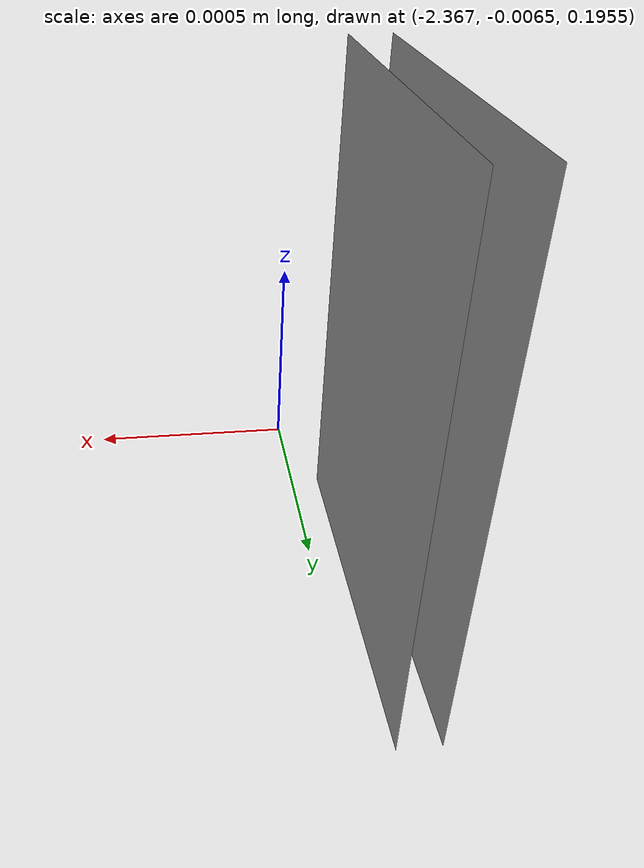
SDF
<sdf version="1.7">
 <world name="default">
  <light name="sun" type="directional">
   <pose>0 0 10 0 -0 0</pose>
   <diffuse>0.8 0.8 0.8 1</diffuse>
   <specular>0.2 0.2 0.2 1</specular>
   <attenuation>
    <range>1000</range>
    <constant>0.9</constant>
    <linear>0.01</linear>
    <quadratic>0.001</quadratic>
   </attenuation>
   <direction>-0.5 0.1 -0.9</direction>
   <spot><inner_angle>0</inner_angle><outer_angle>0</outer_angle><falloff>0</falloff></spot>
  </light>
  <model name="ground_plane">
   <static>1</static>
   <link name="link">
    <collision name="collision">
     <geometry><plane><normal>0 0 1</normal><size>100 100</size></plane></geometry>
     <surface><friction><ode><mu>100</mu><mu2>50</mu2></ode></friction></surface>
    </collision>
    <visual name="visual">
     <cast_shadows>0</cast_shadows>
     <geometry><plane><normal>0 0 1</normal><size>100 100</size></plane></geometry>
     <material>
      <script><uri>file://media/materials/scripts/gazebo.material</uri><name>Gazebo/Grey</name></script>
     </material>
    </visual>
   </link>
  </model>
  <gravity>0 0 -9.8</gravity>
  <magnetic_field>6e-06 2.3e-05 -4.2e-05</magnetic_field>
  <atmosphere type="adiabatic"/>
  <physics type="ode">
   <max_step_size>0.001</max_step_size>
   <real_time_factor>1</real_time_factor>
   <real_time_update_rate>1000</real_time_update_rate>
  </physics>
  <scene><ambient>0.4 0.4 0.4 1</ambient><background>0.7 0.7 0.7 1</background><shadows>1</shadows></scene>
  <audio><device>default</device></audio>
  <spherical_coordinates>
   <surface_model>EARTH_WGS84</surface_model>
   <latitude_deg>0</latitude_deg>
   <longitude_deg>0</longitude_deg>
   <elevation>0</elevation>
   <heading_deg>0</heading_deg>
  </spherical_coordinates>
  <model name="aruco_marker">
   <link name="link">
    <inertial>
     <mass>0.001</mass>
     <inertia>
      <ixx>3.75e-06</ixx>
      <ixy>0</ixy>
      <ixz>0</ixz>
      <iyy>1.875e-06</iyy>
      <iyz>0</iyz>
      <izz>1.875e-06</izz>
     </inertia>
    </inertial>
    <visual name="front_visual">
     <pose>5e-05 0 0 0 -0 0</pose>
     <geometry><box><size>0 0.000896387 0.0012333</size></box></geometry>
     <material>
      <script>
       <uri>model://aruco_marker/materials/scripts</uri>
       <uri>model://aruco_marker/materials/textures</uri>
       <name>Marker</name>
      </script>
     </material>
    </visual>
    <visual name="rear_visual">
     <pose>-5e-05 0 0 0 -0 0</pose>
     <geometry><box><size>0 0.000896387 0.0012333</size></box></geometry>
    </visual>
    <collision name="collision"><geometry><box><size>0 0.000896387 0.0012333</size></box></geometry></collision>
    <enable_wind>1</enable_wind>
    <kinematic>1</kinematic>
   </link>
   <pose>-2.36716 -0.006001 0.19597 0 8e-06 3.7e-05</pose>
  </model>
 </world>
</sdf>
